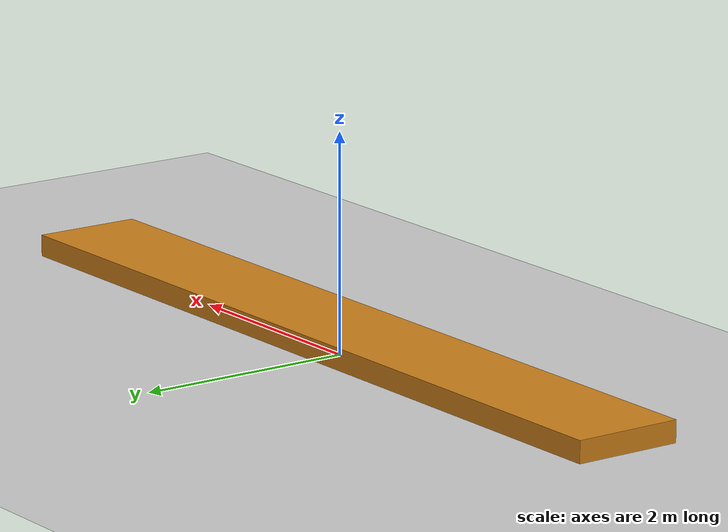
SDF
<?xml version="1.0" ?>
<sdf version="1.7">
  <world name="deprecated_world_alias">
    <include><uri>model://ground_plane</uri></include>
    <include><uri>model://sun</uri></include>
    <model name="deprecated_notice">
      <static>true</static>
      <pose>0 0 0.2 0 0 0</pose>
      <link name="link">
        <visual name="v">
          <geometry><box><size>8 1 0.2</size></box></geometry>
          <material><ambient>0.8 0.5 0.1 1</ambient><diffuse>0.8 0.5 0.1 1</diffuse></material>
        </visual>
      </link>
    </model>
  </world>
</sdf>
